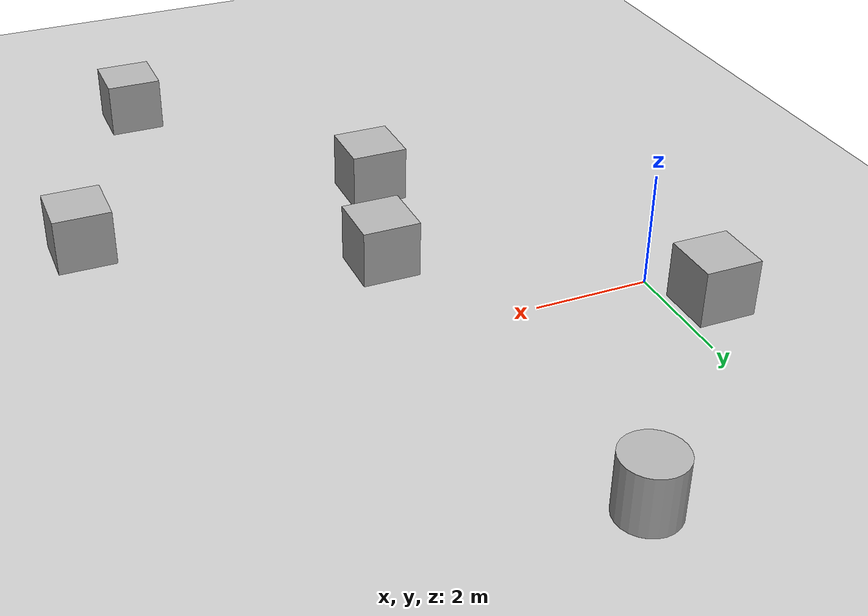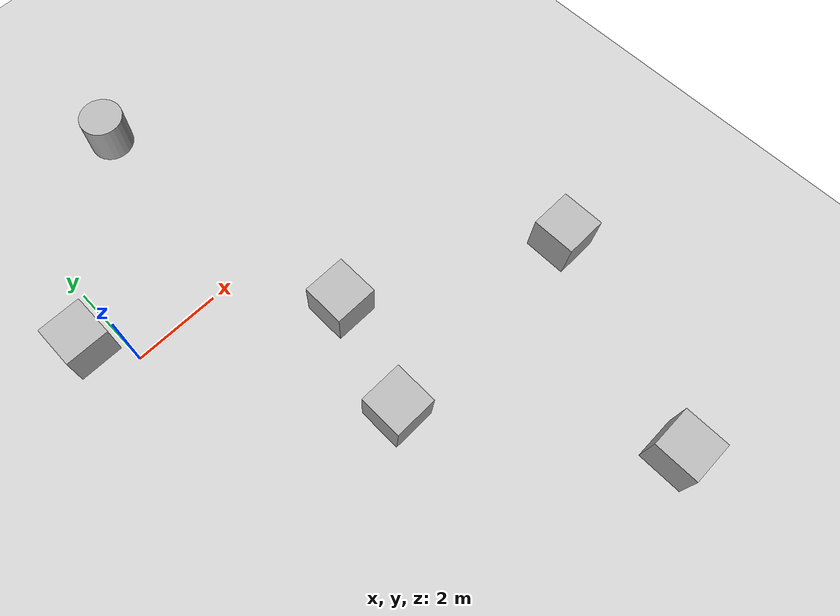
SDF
<sdf version="1.9">
 <world name="demo">
  <plugin name="ignition::gazebo::systems::Physics" filename="ignition-gazebo-physics-system"/>
  <plugin name="ignition::gazebo::systems::SceneBroadcaster" filename="ignition-gazebo-scene-broadcaster-system"/>
  <plugin name="ignition::gazebo::systems::UserCommands" filename="ignition-gazebo-user-commands-system"/>
  <plugin name="ignition::gazebo::systems::Imu" filename="libignition-gazebo-imu-system.so"/>
  <plugin name="ignition::gazebo::systems::JointStatePublisher" filename="libignition-gazebo-joint-state-publisher-system.so"/>
  <plugin name="ignition::gazebo::systems::TriggeredPublisher" filename="libignition-gazebo-triggered-publisher-system.so">
   <input type="ignition.msgs.Int32" topic="/keyboard/keypress"><match field="data">16777235</match></input>
   <output type="ignition.msgs.Twist" topic="/cmd_vel">linear: {x: 0.5}, angular: {z: 0.0}</output>
  </plugin>
  <plugin name="ignition::gazebo::systems::TriggeredPublisher" filename="libignition-gazebo-triggered-publisher-system.so">
   <input type="ignition.msgs.Int32" topic="/keyboard/keypress"><match field="data">16777237</match></input>
   <output type="ignition.msgs.Twist" topic="/cmd_vel">linear: {x: -0.5}, angular: {z: 0.0}</output>
  </plugin>
  <plugin name="ignition::gazebo::systems::TriggeredPublisher" filename="libignition-gazebo-triggered-publisher-system.so">
   <input type="ignition.msgs.Int32" topic="/keyboard/keypress"><match field="data">16777236</match></input>
   <output type="ignition.msgs.Twist" topic="/cmd_vel">linear: {x: 0.0}, angular: {z: -0.5}</output>
  </plugin>
  <plugin name="ignition::gazebo::systems::TriggeredPublisher" filename="libignition-gazebo-triggered-publisher-system.so">
   <input type="ignition.msgs.Int32" topic="/keyboard/keypress"><match field="data">16777234</match></input>
   <output type="ignition.msgs.Twist" topic="/cmd_vel">linear: {x: 0.0}, angular: {z: 0.5}</output>
  </plugin>
  <plugin name="ignition::gazebo::systems::Sensors" filename="libignition-gazebo-sensors-system.so">
   <render_engine>ogre2</render_engine>
  </plugin>
  <gravity>0 0 -9.8</gravity>
  <magnetic_field>6e-06 2.3e-05 -4.2e-05</magnetic_field>
  <atmosphere type="adiabatic"/>
  <physics type="ode">
   <max_step_size>0.001</max_step_size>
   <real_time_factor>1</real_time_factor>
   <real_time_update_rate>1000</real_time_update_rate>
  </physics>
  <scene><ambient>0.4 0.4 0.4 1</ambient><background>0.7 0.7 0.7 1</background><shadows>true</shadows></scene>
  <audio><device>default</device></audio>
  <spherical_coordinates>
   <surface_model>EARTH_WGS84</surface_model>
   <latitude_deg>0</latitude_deg>
   <longitude_deg>0</longitude_deg>
   <elevation>0</elevation>
   <heading_deg>0</heading_deg>
  </spherical_coordinates>
  <model name="box">
   <pose>-0.633749 0.959498 0.5 -0 0 -0</pose>
   <link name="box_link">
    <inertial>
     <inertia><ixx>0.16666</ixx><ixy>0</ixy><ixz>0</ixz><iyy>0.16666</iyy><iyz>0</iyz><izz>0.16666</izz></inertia>
     <mass>1</mass>
    </inertial>
    <collision name="box_collision"><geometry><box><size>1 1 1</size></box></geometry></collision>
    <visual name="box_visual">
     <geometry><box><size>1 1 1</size></box></geometry>
     <material>
      <ambient>0.3 0.3 0.3 1</ambient>
      <diffuse>0.7 0.7 0.7 1</diffuse>
      <specular>1 1 1 1</specular>
     </material>
    </visual>
   </link>
   <static>false</static>
  </model>
  <model name="box_0">
   <pose>3.84314 -2.13245 0.5 0 0 -0</pose>
   <link name="box_link">
    <inertial>
     <inertia><ixx>0.16666</ixx><ixy>0</ixy><ixz>0</ixz><iyy>0.16666</iyy><iyz>0</iyz><izz>0.16666</izz></inertia>
     <mass>1</mass>
    </inertial>
    <collision name="box_collision"><geometry><box><size>1 1 1</size></box></geometry></collision>
    <visual name="box_visual">
     <geometry><box><size>1 1 1</size></box></geometry>
     <material>
      <ambient>0.3 0.3 0.3 1</ambient>
      <diffuse>0.7 0.7 0.7 1</diffuse>
      <specular>1 1 1 1</specular>
     </material>
    </visual>
   </link>
   <static>false</static>
  </model>
  <model name="cylinder">
   <pose>2.87012 4.80508 0.499999 0 -0 0</pose>
   <link name="cylinder_link">
    <inertial>
     <inertia>
      <ixx>0.14580000000000001</ixx>
      <ixy>0</ixy>
      <ixz>0</ixz>
      <iyy>0.14580000000000001</iyy>
      <iyz>0</iyz>
      <izz>0.125</izz>
     </inertia>
     <mass>1</mass>
    </inertial>
    <collision name="cylinder_collision">
     <geometry><cylinder><radius>0.5</radius><length>1</length></cylinder></geometry>
    </collision>
    <visual name="cylinder_visual">
     <geometry><cylinder><radius>0.5</radius><length>1</length></cylinder></geometry>
     <material>
      <ambient>0.3 0.3 0.3 1</ambient>
      <diffuse>0.7 0.7 0.7 1</diffuse>
      <specular>1 1 1 1</specular>
     </material>
    </visual>
   </link>
   <static>false</static>
  </model>
  <model name="ground_plane">
   <static>true</static>
   <link name="link">
    <collision name="collision">
     <geometry><plane><normal>0 0 1</normal><size>100 100</size></plane></geometry>
     <surface>
      <contact><collide_bitmask>65535</collide_bitmask></contact>
      <friction><ode><mu>100</mu><mu2>50</mu2></ode></friction>
     </surface>
    </collision>
    <visual name="visual">
     <cast_shadows>false</cast_shadows>
     <geometry><plane><normal>0 0 1</normal><size>100 100</size></plane></geometry>
     <material>
      <script><uri>file://media/materials/scripts/gazebo.material</uri><name>Gazebo/Grey</name></script>
     </material>
    </visual>
    <inertial>
     <mass>1</mass>
     <inertia><ixx>1</ixx><ixy>0</ixy><ixz>0</ixz><iyy>1</iyy><iyz>0</iyz><izz>1</izz></inertia>
    </inertial>
   </link>
  </model>
  <model name="box_1">
   <pose>8.42727 -4.39754 0.5 0 0 -0</pose>
   <link name="box_link">
    <inertial>
     <inertia><ixx>0.16666</ixx><ixy>0</ixy><ixz>0</ixz><iyy>0.16666</iyy><iyz>0</iyz><izz>0.16666</izz></inertia>
     <mass>1</mass>
    </inertial>
    <collision name="box_collision"><geometry><box><size>1 1 1</size></box></geometry></collision>
    <visual name="box_visual">
     <geometry><box><size>1 1 1</size></box></geometry>
     <material>
      <ambient>0.3 0.3 0.3 1</ambient>
      <diffuse>0.7 0.7 0.7 1</diffuse>
      <specular>1 1 1 1</specular>
     </material>
    </visual>
   </link>
   <static>false</static>
  </model>
  <model name="box_2">
   <pose>6.42923 -9.1031 0.5 0 0 -0</pose>
   <link name="box_link">
    <inertial>
     <inertia><ixx>0.16666</ixx><ixy>0</ixy><ixz>0</ixz><iyy>0.16666</iyy><iyz>0</iyz><izz>0.16666</izz></inertia>
     <mass>1</mass>
    </inertial>
    <collision name="box_collision"><geometry><box><size>1 1 1</size></box></geometry></collision>
    <visual name="box_visual">
     <geometry><box><size>1 1 1</size></box></geometry>
     <material>
      <ambient>0.3 0.3 0.3 1</ambient>
      <diffuse>0.7 0.7 0.7 1</diffuse>
      <specular>1 1 1 1</specular>
     </material>
    </visual>
   </link>
   <static>false</static>
  </model>
  <model name="box_3">
   <pose>3.05808 -4.60715 0.5 0 0 -0</pose>
   <link name="box_link">
    <inertial>
     <inertia><ixx>0.16666</ixx><ixy>0</ixy><ixz>0</ixz><iyy>0.16666</iyy><iyz>0</iyz><izz>0.16666</izz></inertia>
     <mass>1</mass>
    </inertial>
    <collision name="box_collision"><geometry><box><size>1 1 1</size></box></geometry></collision>
    <visual name="box_visual">
     <geometry><box><size>1 1 1</size></box></geometry>
     <material>
      <ambient>0.3 0.3 0.3 1</ambient>
      <diffuse>0.7 0.7 0.7 1</diffuse>
      <specular>1 1 1 1</specular>
     </material>
    </visual>
   </link>
   <static>false</static>
  </model>
  <light name="sun" type="directional">
   <pose>0 0 10 0 -0 0</pose>
   <intensity>1</intensity>
   <direction>-0.5 0.1 -0.9</direction>
   <diffuse>0.8 0.8 0.8 1</diffuse>
   <specular>0.2 0.2 0.2 1</specular>
   <attenuation>
    <range>1000</range>
    <linear>0.01</linear>
    <constant>0.90000000000000002</constant>
    <quadratic>0.001</quadratic>
   </attenuation>
   <spot><inner_angle>0</inner_angle><outer_angle>0</outer_angle><falloff>0</falloff></spot>
  </light>
 </world>
</sdf>
